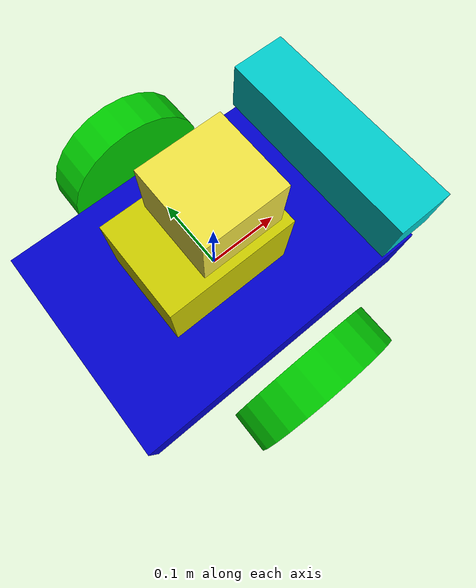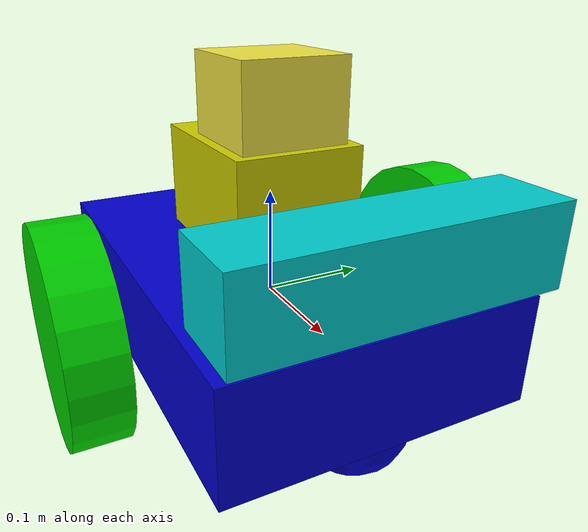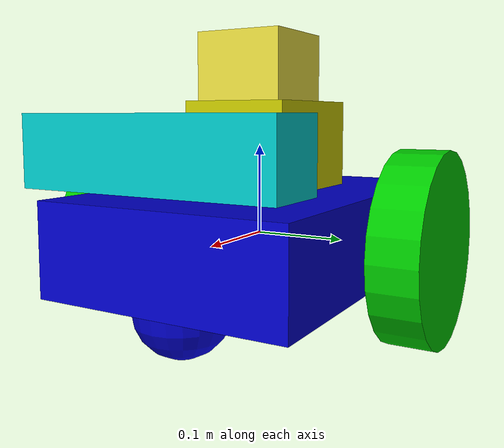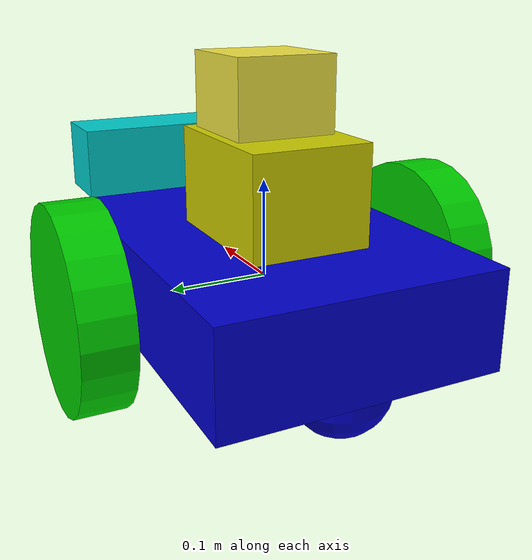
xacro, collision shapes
<?xml version='1.0'?>

<robot name="li_bot" xmlns:xacro="http://www.ros.org/wiki/xacro">
  <xacro:include filename="$(find slam_project)/urdf/li_bot.gazebo" />

  <xacro:property name="M_PI" value="3.1415926535897931" />

  <link name="robot_footprint"></link>

  <joint name="robot_footprint_joint" type="fixed">
    <origin xyz="0 0 0" rpy="0 0 0" />
    <parent link="robot_footprint"/>
    <child link="chassis" />
  </joint>

  <link name='chassis'>
    <pose>0 0 0.1 0 0 0</pose>

    <inertial>
      <mass value="15.0"/>
      <origin xyz="0.0 0 0" rpy=" 0 0 0"/>
      <inertia
          ixx="0.1" ixy="0" ixz="0"
          iyy="0.1" iyz="0"
          izz="0.1"
      />
    </inertial>

    <collision name='collision'>
      <origin xyz="0 0 0" rpy=" 0 0 0"/>
      <geometry>
        <box size=".4 .28 .1"/>
      </geometry>
    </collision>

    <visual name='chassis_visual'>
      <origin xyz="0 0 0" rpy=" 0 0 0"/>
      <geometry>
        <box size=".4 .28 .1"/>
      </geometry>
      <material name="blue">
        <color rgba="0 0 0.8 1"/>
      </material>
    </visual>

    <collision name='back_caster_collision'>
      <origin xyz="-0.15 0 -0.05" rpy=" 0 0 0"/>
      <geometry>
        <sphere radius="0.05"/>
      </geometry>
      <surface>
        <friction>
          <ode>
            <mu>0</mu>
            <mu2>0</mu2>
            <slip1>1.0</slip1>
            <slip2>1.0</slip2>
          </ode>
        </friction>
      </surface>
    </collision>

    <visual name='back_caster_visual'>
      <origin xyz="-0.15 0 -0.05" rpy=" 0 0 0"/>
      <geometry>
        <sphere radius="0.05"/>
      </geometry>
    </visual>

    <collision name='front_caster_collision'>
      <origin xyz="0.15 0 -0.05" rpy=" 0 0 0"/>
      <geometry>
        <sphere radius="0.05"/>
      </geometry>
      <surface>
        <friction>
          <ode>
            <mu>0</mu>
            <mu2>0</mu2>
            <slip1>1.0</slip1>
            <slip2>1.0</slip2>
          </ode>
        </friction>
      </surface>
    </collision>

    <visual name='front_caster_visual'>
      <origin xyz="0.15 0 -0.05" rpy=" 0 0 0"/>
      <geometry>
        <sphere radius="0.05"/>
      </geometry>
    </visual>

  </link>

  <joint type="fixed" name="topcube_joint">
    <origin xyz="0.0 0 0.0" rpy="0 0 0"/>
    <child link="topcube"/>
    <parent link="chassis"/>
  </joint>

  <link name='topcube'>
    <inertial>
      <mass value="0.6"/>
      <origin xyz="-0.02 0.0 0.1" rpy=" 0 0 0"/>
      <inertia ixx="0.1" ixy="0" ixz="0" iyy="0.1" iyz="0" izz="0.1"/>
    </inertial>
    <collision name='topcube_collision'>
      <origin xyz="-0.02 0.0 0.1" rpy=" 0 0 0"/>
      <geometry>
          <box size="0.16 0.12 0.1"/>
      </geometry>
    </collision>
    <visual name='topcube_visual'>
      <origin xyz="-0.02 0.0 0.1" rpy=" 0 0 0"/>
      <geometry>
          <box size="0.16 0.12 0.1"/>
      </geometry>
      <material name="yellow">
        <color rgba="0.8 0.8 0.0 1"/>
      </material>
    </visual>
  </link>

  <joint type="fixed" name="hokuyo_joint">
    <origin xyz="0.0 0 0.175" rpy="0 0 0"/>
    <child link="hokuyo"/>
    <parent link="topcube"/>
  </joint>

  <link name='hokuyo'>
    <inertial>
      <mass value="0.1"/>
      <origin xyz="0.0 0 0.0" rpy="0 0 0"/>
      <inertia ixx="1e-6" ixy="0" ixz="0" iyy="1e-6" iyz="0" izz="1e-6"/>
    </inertial>
    <collision name='hokuyo_collision'>
      <origin xyz="0.0 0 0.0" rpy="0 0 0"/>
      <geometry>
        <box size="0.1 0.1 0.1"/>
      </geometry>
    </collision>
    <visual name='hokuyo_visual'>
      <origin xyz="0.0 0 0.0" rpy="0 0 0"/>
      <geometry>
        <mesh filename="package://slam_project/meshes/hokuyo.dae"/>
      </geometry>
    </visual>
  </link>

  <link name="left_wheel">
    <collision name='left_wheel_collision'>
      <origin xyz="0.0 0.0 0.0" rpy="0.0 1.5707 1.5707"/>
      <geometry>
        <cylinder radius="0.1" length="0.05"/>
      </geometry>
    </collision>
    <inertial>
      <mass value="5.0"/>
      <origin xyz="0.0 0 0" rpy="0.0 1.5707 1.5707"/>
      <inertia ixx="0.1" ixy="0" ixz="0" iyy="0.1" iyz="0" izz="0.1" />
    </inertial>
    <visual name='left_wheel_visual'>
     <origin xyz="0.0 0.0 0.0" rpy="0.0 1.5707 1.5707"/>
      <geometry>
        <cylinder radius="0.1" length="0.05"/>
      </geometry>
      <material name="green">
        <color rgba="0 0.8 0 1"/>
      </material>
    </visual>
  </link>

  <joint type="continuous" name="left_wheel_hinge">
    <origin xyz="0 0.19 0" rpy="0 0 0"/>
    <child link="left_wheel"/>
    <parent link="chassis"/>
    <axis xyz="0 1 0" rpy="0 0 0"/>
    <limit effort="10000" velocity="1000"/>
    <joint_properties damping="1.0" friction="1.0"/>
  </joint>

  <link name="right_wheel">
    <collision name='right_wheel_collision'>
      <origin xyz="0.0 0.0 0.0" rpy="0.0 1.5707 1.5707"/>
      <geometry>
        <cylinder radius="0.1" length="0.05"/>
      </geometry>
    </collision>
    <inertial>
      <mass value="5.0"/>
      <origin xyz="0.0 0.0 0.0" rpy="0.0 1.5707 1.5707"/>
      <inertia ixx="0.1" ixy="0" ixz="0" iyy="0.1" iyz="0" izz="0.1" />
    </inertial>
    <visual name='right_wheel_visual'>
      <origin xyz="0.0 0.0 0.0" rpy="0.0 1.5707 1.5707"/>
      <geometry>
        <cylinder radius="0.1" length="0.05"/>
      </geometry>
      <material name="green">
        <color rgba="0 0.8 0 1"/>
      </material>
    </visual>
  </link>

  <joint type="continuous" name="right_wheel_hinge">
    <origin xyz="0 -0.19 0" rpy="0 0 0"/>
    <child link="right_wheel"/>
    <parent link="chassis"/>
    <axis xyz="0 1 0" rpy="0 0 0"/>
    <limit effort="10000" velocity="1000"/>
    <joint_properties damping="1.0" friction="1.0"/>
  </joint>

  <joint name="camera_joint" type="fixed">
    <origin xyz="0.18 0 0.1" rpy="0 0 0" />
    <parent link="chassis" />
    <child link="camera" />
  </joint>

  <link name="camera">
    <inertial>
      <mass value="0.01" />
      <origin xyz="0 0 0" />
      <inertia ixx="0.001" ixy="0.0" ixz="0.0"
        iyy="0.001" iyz="0.0"
        izz="0.001" />
    </inertial>
    <visual>
      <origin xyz=" 0 0 0 " rpy="0 0 0" />
      <geometry>
        <mesh filename="package://slam_project/meshes/kinect.dae"/>
      </geometry>
      <material name="teal">
        <color rgba="0 0.8 0.8 1"/>
      </material>
    </visual>
    <collision>
      <origin xyz="0.0 0.0 0.0" rpy="0 0 0" />
      <geometry>
        <box size="0.0730 .2760 0.0720"/>
      </geometry>
    </collision>
  </link>

  <joint name="camera_depth_joint" type="fixed">
    <origin xyz="0 0.018 0" rpy="0 0 0" />
    <parent link="camera" />
    <child link="camera_depth_frame" />
  </joint>

  <link name="camera_depth_frame">
    <inertial>
      <mass value="0.01" />
      <origin xyz="0 0 0" />
      <inertia ixx="0.001" ixy="0.0" ixz="0.0"
        iyy="0.001" iyz="0.0"
        izz="0.001" />
    </inertial>
  </link>

  <joint name="camera_depth_optical_joint" type="fixed">
    <origin xyz="0 0 0" rpy="${-M_PI/2} 0 ${-M_PI/2}" />
    <parent link="camera_depth_frame" />
    <child link="camera_depth_optical_frame" />
  </joint>

  <link name="camera_depth_optical_frame">
    <inertial>
      <mass value="0.001" />
      <origin xyz="0 0 0" />
      <inertia ixx="0.0001" ixy="0.0" ixz="0.0"
        iyy="0.0001" iyz="0.0"
        izz="0.0001" />
    </inertial>
  </link>

  <joint name="camera_rgb_joint" type="fixed">
    <origin xyz="0 -0.005 0" rpy="0 0 0" />
    <parent link="camera" />
    <child link="camera_rgb_frame" />
  </joint>

  <link name="camera_rgb_frame">
    <inertial>
      <mass value="0.001" />
      <origin xyz="0 0 0" />
      <inertia ixx="0.0001" ixy="0.0" ixz="0.0"
        iyy="0.0001" iyz="0.0"
        izz="0.0001" />
    </inertial>
  </link>

  <joint name="camera_rgb_optical_joint" type="fixed">
    <origin xyz="0 0 0" rpy="${-M_PI/2} 0 ${-M_PI/2}" />
    <parent link="camera_rgb_frame" />
    <child link="camera_rgb_optical_frame" />
  </joint>

  <link name="camera_rgb_optical_frame">
    <inertial>
      <mass value="0.001" />
      <origin xyz="0 0 0" />
      <inertia ixx="0.0001" ixy="0.0" ixz="0.0"
        iyy="0.0001" iyz="0.0"
        izz="0.0001" />
    </inertial>
  </link>

</robot>
